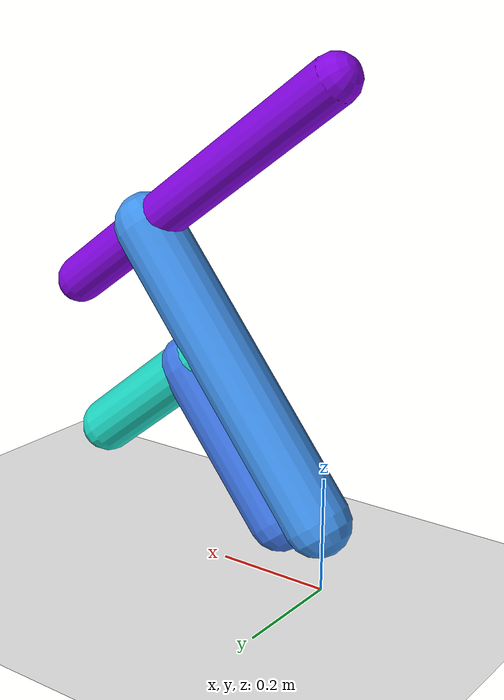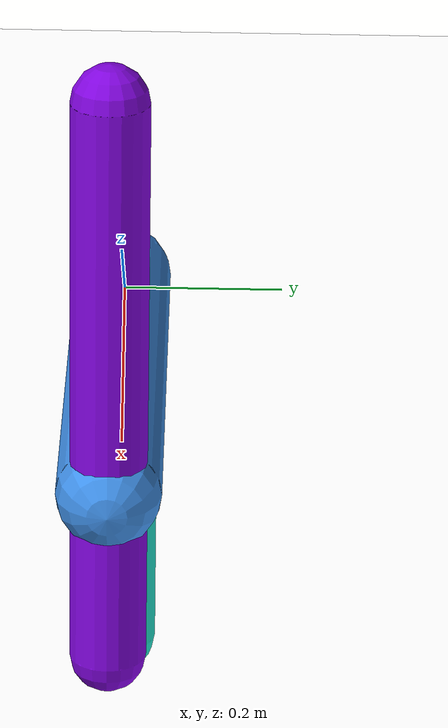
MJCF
<mujoco model="morphology">
  <option timestep="0.01"/>
  <default>
    <default class="/"/>
  </default>
  <asset>
    <texture name="texplane" type="2d" builtin="checker" rgb1="0.1 0.2 0.3" rgb2="0.2 0.3 0.4" width="300" height="300"/>
    <material name="MatPlane" class="/" texture="texplane" texrepeat="20 20" specular="1" shininess="1" reflectance="0.5"/>
  </asset>
  <worldbody>
    <light name="//unnamed_light_0" class="/" directional="true" pos="0 0 1.5" dir="0 0 -1.3" cutoff="1e+02" exponent="1" diffuse="1 1 1" specular="0.1 0.1 0.1"/>
    <geom name="ground" class="/" type="plane" size="15 15 0.5" material="MatPlane" rgba="1 1 1 1"/>
    <body name="body" pos="0 0 0.85">
      <geom name="geom0" class="/" type="capsule" contype="1" conaffinity="1" condim="3" size="0.043" rgba="0.51 0.017 0.88 1" friction="0.4 0.1 0.1" fromto="0 0 0 0.53 0 -0.39"/>
      <body name="body1" pos="0.37 0 -0.27">
        <geom name="geom1" class="/" type="capsule" contype="1" conaffinity="1" condim="3" size="0.059" rgba="0.25 0.57 0.92 1" friction="0.4 0.1 0.1" fromto="0 0 0 -0.36 0 -0.46"/>
        <body name="body2" pos="-0.15 0 -0.19">
          <geom name="geom2" class="/" type="capsule" contype="1" conaffinity="1" condim="3" size="0.049" rgba="0.12 0.86 0.78 1" friction="0.4 0.1 0.1" fromto="0 0 0 0.25 0 -0.2"/>
          <body name="body3" pos="0.054 0 -0.044">
            <geom name="geom3" class="/" type="capsule" contype="1" conaffinity="1" condim="3" size="0.055" rgba="0.24 0.46 0.89 1" friction="0.4 0.1 0.1" fromto="0 0 0 -0.19 0 -0.24"/>
            <joint name="joint3" class="/" type="hinge" axis="0 1 0" limited="true" stiffness="20" range="-56 56" armature="0.1" damping="2"/>
          </body>
          <joint name="joint2" class="/" type="hinge" axis="0 1 0" limited="true" stiffness="20" range="-47 47" armature="0.1" damping="2"/>
        </body>
        <joint name="joint1" class="/" type="hinge" axis="0 1 0" limited="true" stiffness="20" range="-61 61" armature="0.1" damping="2"/>
      </body>
      <joint name="rootx" class="/" type="slide" axis="1 0 0" limited="false" stiffness="0" armature="0" damping="0"/>
      <joint name="rootz" class="/" type="slide" axis="0 0 1" limited="false" stiffness="0" armature="0" damping="0"/>
      <joint name="rooty" class="/" type="hinge" axis="0 1 0" limited="false" stiffness="0" armature="0" damping="0"/>
    </body>
  </worldbody>
  <actuator>
    <motor name="motor3" class="/" ctrllimited="true" ctrlrange="-1 1" gear="1.2e+02" joint="joint3"/>
    <motor name="motor2" class="/" ctrllimited="true" ctrlrange="-1 1" gear="1e+02" joint="joint2"/>
    <motor name="motor1" class="/" ctrllimited="true" ctrlrange="-1 1" gear="1.5e+02" joint="joint1"/>
  </actuator>
  <sensor>
    <subtreelinvel name="velocity" body="body"/>
  </sensor>
</mujoco>
